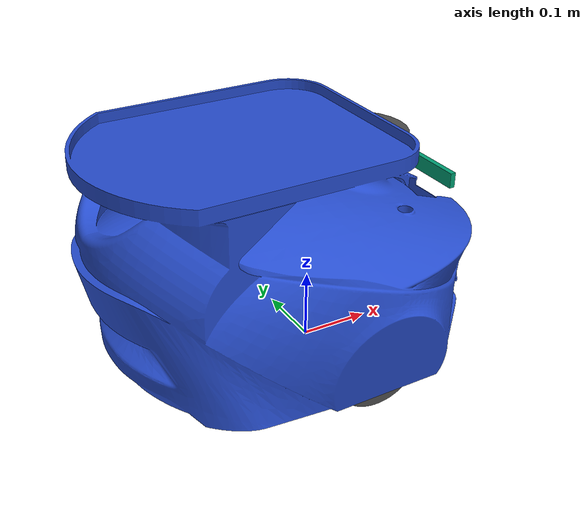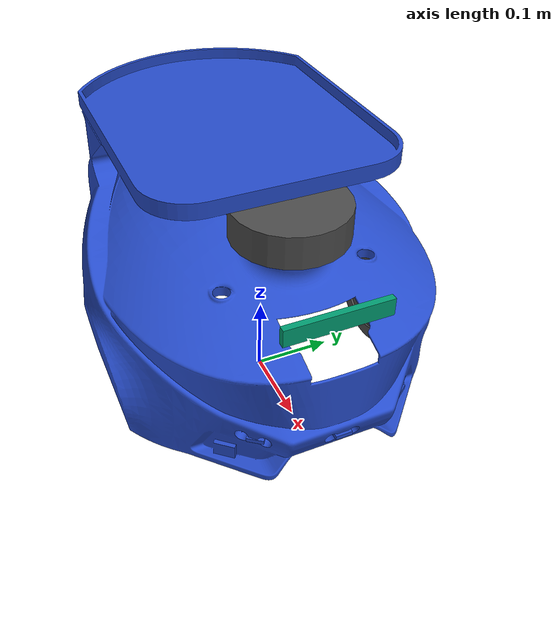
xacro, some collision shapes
<?xml version="1.0" ?>
<robot name="AIEdu" xmlns:xacro="http://ros.org/wiki/xacro">
  <xacro:include filename="$(find aiedu_description)/urdf/common_properties.xacro"/>
  <xacro:include filename="$(find aiedu_description)/urdf/aiedu.gazebo.xacro"/>

  <xacro:property name="r200_cam_rgb_px" value="0.005"/>
  <xacro:property name="r200_cam_rgb_py" value="0.018"/>
  <xacro:property name="r200_cam_rgb_pz" value="0.013"/>
  <xacro:property name="r200_cam_depth_offset" value="0.01"/>

  <link name="base_footprint"/>

  <joint name="base_joint" type="fixed">
    <parent link="base_footprint"/>
    <child link="base_link" />
    <origin xyz="0 0 0.068" rpy="0 0 0"/>
  </joint>

  <link name="base_link">
    <visual>
      <origin xyz="0.0 0.0 -0.03453" rpy="0 0 ${M_PI}"/>
      <geometry>
        <mesh filename="package://aiedu_description/meshes/base/aiedu_case_asm.STL" scale="1 1 1"/>
      </geometry>
      <material name="blue"/>
    </visual>
    <collision>
      <origin xyz="0.0 0.0 -0.003453" rpy="0 0 ${M_PI}"/>
      <geometry>
        <mesh filename="package://aiedu_description/meshes/base/aiedu_case_asm.STL" scale="1 1 1"/>
      </geometry>
    </collision>
    <inertial>
      <origin xyz="-0.0426 0.0 0.0" rpy="0 0 ${M_PI}"/>
      <mass value="1"/>
      <inertia ixx="0.01" ixy="0.0" ixz="0.0"
               iyy="0.01" iyz="0.0"
               izz="0.01" />
    </inertial>
  </link>

  <joint name="wheel_left_joint" type="continuous">
    <parent link="base_link"/>
    <child link="wheel_left_link"/>
    <origin xyz="0.0 0.160 0.0" rpy="0 0 ${M_PI * 0.5}"/>
    <axis xyz="1 0 0"/>
  </joint>

  <link name="wheel_left_link">
    <visual>
      <origin xyz="0 0 0" rpy="0 0 0"/>
      <geometry>
        <mesh filename="package://aiedu_description/meshes/wheels/wheel.STL" scale="1 1 1"/>
      </geometry>
      <material name="dark"/>
    </visual>
    <collision>
      <origin rpy="0 0 0" xyz="0 0 0"/>
      <geometry>
        <mesh filename="package://aiedu_description/meshes/wheels/wheel.STL" scale="1 1 1"/>
      </geometry>
    </collision>
    <inertial>
      <origin xyz="0 0 0" />
      <mass value="0.01" />
      <inertia ixx="0.001" ixy="0.0" ixz="0.0"
               iyy="0.001" iyz="0.0"
               izz="0.001" />
    </inertial>
  </link>

  <joint name="wheel_right_joint" type="continuous">
    <parent link="base_link"/>
    <child link="wheel_right_link"/>
    <origin xyz="0.0 -0.160 0.0" rpy="0 0 -${M_PI * 0.5}"/>
    <axis xyz="1 0 0"/>
  </joint>

  <link name="wheel_right_link">
    <visual>
      <origin xyz="0 0 0" rpy="0 0 0"/>
      <geometry>
        <mesh filename="package://aiedu_description/meshes/wheels/wheel.STL" scale="1 1 1"/>
      </geometry>
      <material name="dark"/>
    </visual>
    <collision>
      <origin rpy="0 0 0" xyz="0 0 0"/>
      <geometry>
        <mesh filename="package://aiedu_description/meshes/wheels/wheel.STL" scale="1 1 1"/>
      </geometry>
    </collision>
    <inertial>
      <origin xyz="0 0 0" />
      <mass value="0.01" />
      <inertia ixx="0.001" ixy="0.0" ixz="0.0"
               iyy="0.001" iyz="0.0"
               izz="0.001" />
    </inertial>
  </link>

  <joint name="caster_back_joint" type="fixed">
    <parent link="base_link"/>
    <child link="caster_back_link"/>
    <origin xyz="-0.2101 0 0.0" rpy="0 0 0"/>
  </joint>

  <link name="caster_back_link">
    <visual>
      <origin xyz="0.0 0 0.0" rpy="0 0 0"/>
      <geometry>
        <sphere radius="0.065"/>
      </geometry>
      <material name="blue"/>
    </visual>
    <collision>
      <origin rpy="0 0 0" xyz="0 0 0"/>
      <geometry>
        <sphere radius="0.065"/>
      </geometry>
    </collision>

    <inertial>
      <origin xyz="0 0 0" />
      <mass value="0.01" />
      <inertia ixx="0.001" ixy="0.0" ixz="0.0"
               iyy="0.001" iyz="0.0"
               izz="0.001" />
    </inertial>
  </link>

  <joint name="imu_joint" type="fixed">
    <parent link="base_link"/>
    <child link="imu_link"/>
    <origin xyz="0.050 0 0.068" rpy="0 0 0"/>
  </joint>

  <link name="imu_link"/>

   <joint name="scan_joint" type="fixed">
    <parent link="base_link"/>
    <child link="base_scan"/>
    <origin xyz="0.075 0 0.215" rpy="0 0 0"/>
  </joint>

  <link name="base_scan">
    <visual>
      <origin xyz="0 0 0.0" rpy="0 0 0"/>
      <geometry>
        <mesh filename="package://aiedu_description/meshes/sensors/lds.stl" scale="0.001 0.001 0.001"/>
      </geometry>
      <material name="dark"/>
    </visual>
    <collision>
      <origin rpy="0 0 0" xyz="0 0 0"/>
      <geometry>
        <cylinder length="0.0408" radius="0.070"/>
      </geometry>
    </collision>
    <inertial>
      <mass value="0.01" />
      <origin xyz="0 0 0" />
      <inertia ixx="0.001" ixy="0.0" ixz="0.0"
               iyy="0.001" iyz="0.0"
               izz="0.001" />
    </inertial>
  </link>

  <joint name="ultrasonic_front_joint" type="fixed">
    <origin xyz="0.220 0.0 0.0205" rpy="0 0 0"/>
    <axis xyz="0 0 0"/>
    <parent link="base_link"/>
    <child link="base_ultrasonic_front"/>
  </joint>

  <link name="base_ultrasonic_front">
    <visual>
      <origin xyz="0.0 0.0 0.0" rpy="0 0 0"/>
      <geometry>
        <box size="0.01 0.020 0.005"/>
      </geometry>
      <material name="blue"/>
    </visual>
  </link>

  <joint name="ultrasonic_left_joint" type="fixed">
    <origin xyz="0.190 +0.09 0.0205" rpy="0 0 ${M_PI/5}"/>
    <axis xyz="0 0 0"/>
    <parent link="base_link"/>
    <child link="base_ultrasonic_left"/>
  </joint>

  <link name="base_ultrasonic_left">
    <visual>
      <origin xyz="0.0 0.0 0.0" rpy="0 0 0"/>
      <geometry>
        <box size="0.01 0.020 0.005"/>
      </geometry>
      <material name="blue"/>
    </visual>
  </link>

  <joint name="ultrasonic_right_joint" type="fixed">
    <origin xyz="0.190 -0.09 0.0205" rpy="0 0 -${M_PI/5}"/>
    <axis xyz="0 0 0"/>
    <parent link="base_link"/>
    <child link="base_ultrasonic_right"/>
  </joint>

  <link name="base_ultrasonic_right">
    <visual>
      <origin xyz="0.0 0.0 0.0" rpy="0 0 0"/>
      <geometry>
        <box size="0.01 0.020 0.005"/>
      </geometry>
      <material name="blue"/>
    </visual>
  </link>

  <joint name="camera_joint" type="fixed">
    <origin xyz="0.190 -0.065 0.150" rpy="0 0 0"/>
    <parent link="base_link"/>
    <child link="camera_link"/>
  </joint>

  <link name="camera_link">
    <visual>
     <origin xyz="0 0 0" rpy="${M_PI*0.5} 0 ${M_PI*0.5}"/>
      <geometry>
       <mesh filename="package://aiedu_description/meshes/sensors/r200.dae" />
      </geometry>
    </visual>
    <collision>
      <origin xyz="0.003 0.065 0.010" rpy="0 0 0"/>
      <geometry>
        <box size="0.008 0.130 0.022"/>
      </geometry>
    </collision>

    <!-- This inertial field needs doesn't contain reliable data!! -->
  </link>

  <joint name="camera_rgb_joint" type="fixed">
    <origin xyz="${r200_cam_rgb_px} ${r200_cam_rgb_py} ${r200_cam_rgb_pz}" rpy="0 0 0"/>
    <parent link="camera_link"/>
    <child link="camera_rgb_frame"/>
  </joint>
  <link name="camera_rgb_frame"/>

  <joint name="camera_rgb_optical_joint" type="fixed">
    <origin xyz="0 0 0" rpy="${-M_PI/2} 0 ${-M_PI/2}"/>
    <parent link="camera_rgb_frame"/>
    <child link="camera_rgb_optical_frame"/>
  </joint>
  <link name="camera_rgb_optical_frame"/>

  <joint name="camera_depth_joint" type="fixed">
    <origin xyz="${r200_cam_rgb_px} ${r200_cam_rgb_py + r200_cam_depth_offset} ${r200_cam_rgb_pz}" rpy="0 0 0"/>
    <parent link="camera_link"/>
    <child link="camera_depth_frame"/>
  </joint>
  <link name="camera_depth_frame"/>

  <joint name="camera_depth_optical_joint" type="fixed">
    <origin xyz="0 0 0" rpy="${-M_PI/2} 0 ${-M_PI/2}"/>
    <parent link="camera_depth_frame"/>
    <child link="camera_depth_optical_frame"/>
  </joint>
  <link name="camera_depth_optical_frame"/>

</robot>
